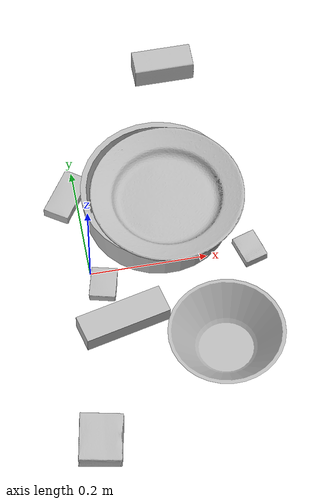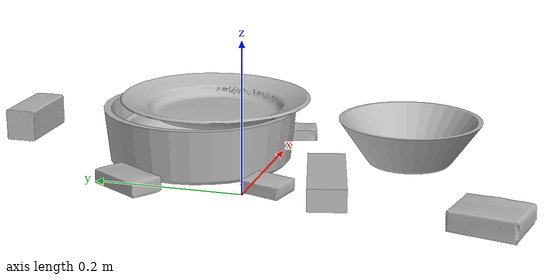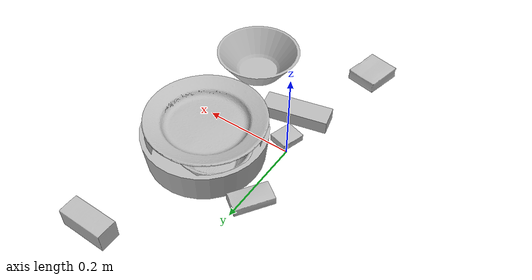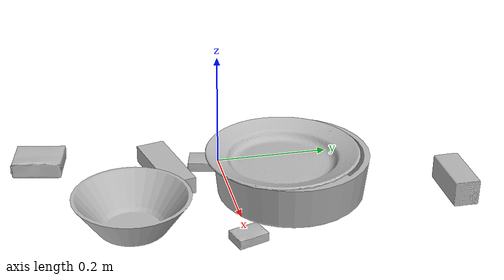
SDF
<sdf version="1.4">
  <world name="default">
    <light name="light1" type="point">
      <pose>0 0 1 0 0 0</pose>
      <diffuse>3 3 3 1</diffuse>
      <specular>3 3 3 1</specular>
    </light>
    <light name="light2" type="point">
      <pose>0 0.5 2 0 0 0</pose>
      <diffuse>1 1 1 1</diffuse>
      <specular>1 1 1 1</specular>
    </light>
    <light name="light3" type="point">
      <pose>0 0.5 2 0 0 0</pose>
      <diffuse>3 3 3 1</diffuse>
      <specular>3 3 3 1</specular>
    </light>
    <scene>
      <ambient>0.7 0.7 0.7</ambient>
    </scene>
    <model name="box1">
      <link name="link_box1">
        <collision name="default">
          <geometry>
            <mesh>
              <uri>model://jenga/collision_meshes/collision.obj</uri>
              <scale>1.0 1.0 1.0</scale>
            </mesh>
          </geometry>
          <surface>
            <friction>
              <ode>
                <mu>0.5</mu>
                <mu2>0.5</mu2>
              </ode>
            </friction>
          <contact>
        <ode>
            <max_vel>0</max_vel>
            <min_depth>0.0001</min_depth>
            <kp>1e8</kp>
        </ode>
    </contact></surface>
        </collision>
        <visual name="default">
          <geometry>
            <mesh>
              <uri>model://jenga/visual_meshes/visual.dae</uri>
              <scale>1.0 1.0 1.0</scale>
            </mesh>
          </geometry>
        </visual>
        <inertial>
          <mass>0.21843092143535614</mass>
          <pose>-2.502855807051674e-07 -0.00010250011109746993 -4.092339804628864e-05 0.0 -7.342154049184251e-07 0.0</pose>
          <inertia>
            <ixx>6.0445138e-05</ixx>
            <iyy>0.0004095746</iyy>
            <izz>0.00043725572</izz>
            <ixy>0</ixy>
            <ixz>0</ixz>
            <iyz>0</iyz>
          </inertia>
        </inertial>
      </link>
      <pose>0.0394376739859581 -0.1006840243935585 0.014999998733401299 2.735757068011383e-08 -4.708119448507397e-09 0.23606508501391757</pose>
    </model>
    <model name="box11">
      <link name="link_box11">
        <collision name="default">
          <geometry>
            <mesh>
              <uri>model://pudding_box/collision_meshes/collision.obj</uri>
              <scale>0.5 0.5 0.5</scale>
            </mesh>
          </geometry>
          <surface>
            <friction>
              <ode>
                <mu>0.5</mu>
                <mu2>0.5</mu2>
              </ode>
            </friction>
          <contact>
        <ode>
            <max_vel>0</max_vel>
            <min_depth>0.0001</min_depth>
            <kp>1e8</kp>
        </ode>
    </contact></surface>
        </collision>
        <visual name="default">
          <geometry>
            <mesh>
              <uri>model://pudding_box/visual_meshes/visual.dae</uri>
              <scale>0.5 0.5 0.5</scale>
            </mesh>
          </geometry>
        </visual>
        <inertial>
          <mass>0.04130476340651512</mass>
          <pose>0.00024474109522998333 0.00040339428232982755 -0.0002594413817860186 0.005213101341234124 -0.006603795469139562 0.020079830758209564</pose>
          <inertia>
            <ixx>1.1673226e-05</ixx>
            <iyy>7.85383e-06</iyy>
            <izz>1.723857e-05</izz>
            <ixy>0</ixy>
            <ixz>0</ixz>
            <iyz>0</iyz>
          </inertia>
        </inertial>
      </link>
      <pose>0.01819656975567341 -0.02860868163406849 0.00986290443688631 0.02234847384480279 -0.011391741357205897 -0.25789985560168865</pose>
    </model>
    <model name="box2">
      <link name="link_box2">
        <collision name="default">
          <geometry>
            <mesh>
              <uri>model://gelatin_box/collision_meshes/collision.obj</uri>
              <scale>1.0 1.0 1.0</scale>
            </mesh>
          </geometry>
          <surface>
            <friction>
              <ode>
                <mu>0.5</mu>
                <mu2>0.5</mu2>
              </ode>
            </friction>
          <contact>
        <ode>
            <max_vel>0</max_vel>
            <min_depth>0.0001</min_depth>
            <kp>1e8</kp>
        </ode>
    </contact></surface>
        </collision>
        <visual name="default">
          <geometry>
            <mesh>
              <uri>model://gelatin_box/visual_meshes/visual.dae</uri>
              <scale>1.0 1.0 1.0</scale>
            </mesh>
          </geometry>
        </visual>
        <inertial>
          <mass>0.24153950810432434</mass>
          <pose>0.0004319618456065655 0.00011156871914863586 -0.0003640321083366871 -0.001050371984258798 -0.004755819621622892 0.016440559472145032</pose>
          <inertia>
            <ixx>0.00017050719</ixx>
            <iyy>0.00012179239</iyy>
            <izz>0.0002595499</izz>
            <ixy>0</ixy>
            <ixz>0</ixz>
            <iyz>0</iyz>
          </inertia>
        </inertial>
      </link>
      <pose>-0.03494126722216606 -0.31722429394721985 0.015168317593634129 0.005597460588126201 -0.007304547001823196 -0.20834730351162248</pose>
    </model>
    <model name="box21">
      <link name="link_box21">
        <collision name="default">
          <geometry>
            <mesh>
              <uri>model://cracker_box/collision_meshes/collision.obj</uri>
              <scale>0.25 0.25 0.25</scale>
            </mesh>
          </geometry>
          <surface>
            <friction>
              <ode>
                <mu>0.5</mu>
                <mu2>0.5</mu2>
              </ode>
            </friction>
          <contact>
        <ode>
            <max_vel>0</max_vel>
            <min_depth>0.0001</min_depth>
            <kp>1e8</kp>
        </ode>
    </contact></surface>
        </collision>
        <visual name="default">
          <geometry>
            <mesh>
              <uri>model://cracker_box/visual_meshes/visual.dae</uri>
              <scale>0.25 0.25 0.25</scale>
            </mesh>
          </geometry>
        </visual>
        <inertial>
          <mass>0.04855586588382721</mass>
          <pose>0.00023660322767682374 6.358561222441494e-05 -0.00042573834070935845 -0.00031620783521113603 -0.01110649053142329 0.0025467954689779603</pose>
          <inertia>
            <ixx>7.719027e-06</ixx>
            <iyy>1.2745631e-05</iyy>
            <izz>1.8189185e-05</izz>
            <ixy>0</ixy>
            <ixz>0</ixz>
            <iyz>0</iyz>
          </inertia>
        </inertial>
      </link>
      <pose>0.27287572622299194 -0.003259524703025818 0.00909603200852871 -0.014050266841666232 -0.005016419160150208 1.8665220141250667</pose>
    </model>
    <model name="box3">
      <link name="link_box3">
        <collision name="default">
          <geometry>
            <mesh>
              <uri>model://wood_block/collision_meshes/collision.obj</uri>
              <scale>0.5 0.5 0.5</scale>
            </mesh>
          </geometry>
          <surface>
            <friction>
              <ode>
                <mu>0.5</mu>
                <mu2>0.5</mu2>
              </ode>
            </friction>
          <contact>
        <ode>
            <max_vel>0</max_vel>
            <min_depth>0.0001</min_depth>
            <kp>1e8</kp>
        </ode>
    </contact></surface>
        </collision>
        <visual name="default">
          <geometry>
            <mesh>
              <uri>model://wood_block/visual_meshes/visual.dae</uri>
              <scale>0.5 0.5 0.5</scale>
            </mesh>
          </geometry>
        </visual>
        <inertial>
          <mass>0.17342756688594818</mass>
          <pose>-2.906657982748584e-06 -0.000285404734313488 0.00013204291462898254 -0.052208426481931185 -0.005192696107352816 -0.006861379630616638</pose>
          <inertia>
            <ixx>5.8018082e-05</ixx>
            <iyy>0.00018327912</iyy>
            <izz>0.00018259356</izz>
            <ixy>0</ixy>
            <ixz>0</ixz>
            <iyz>0</iyz>
          </inertia>
        </inertial>
      </link>
      <pose>0.19162145256996155 0.3779684901237488 0.022629255428910255 -0.005208565849467675 0.005718648368132103 0.004891844705487058</pose>
    </model>
    <model name="box31">
      <link name="link_box31">
        <collision name="default">
          <geometry>
            <mesh>
              <uri>model://sugar_box/collision_meshes/collision.obj</uri>
              <scale>0.5 0.5 0.5</scale>
            </mesh>
          </geometry>
          <surface>
            <friction>
              <ode>
                <mu>0.5</mu>
                <mu2>0.5</mu2>
              </ode>
            </friction>
          <contact>
        <ode>
            <max_vel>0</max_vel>
            <min_depth>0.0001</min_depth>
            <kp>1e8</kp>
        </ode>
    </contact></surface>
        </collision>
        <visual name="default">
          <geometry>
            <mesh>
              <uri>model://sugar_box/visual_meshes/visual.dae</uri>
              <scale>0.5 0.5 0.5</scale>
            </mesh>
          </geometry>
        </visual>
        <inertial>
          <mass>0.102778859436512</mass>
          <pose>0.0005171863595023751 1.924554817378521e-05 -0.00018182402709499002 -0.00040462592244169 0.0010506634051582892 0.0026153783234817013</pose>
          <inertia>
            <ixx>2.1408765e-05</ixx>
            <iyy>6.919753e-05</iyy>
            <izz>8.2837694e-05</izz>
            <ixy>0</ixy>
            <ixz>0</ixz>
            <iyz>0</iyz>
          </inertia>
        </inertial>
      </link>
      <pose>-0.015232224017381668 0.14961393177509308 0.011399302631616592 0.0007754463514609489 -0.023433272661757733 -2.1739318808614403</pose>
    </model>
    <model name="plate1">
      <link name="link_plate1">
        <collision name="default">
          <geometry>
            <mesh>
              <uri>model://pan_tefal/collision_meshes/collision.obj</uri>
              <scale>1.0 1.0 1.0</scale>
            </mesh>
          </geometry>
          <surface>
            <friction>
              <ode>
                <mu>0.5</mu>
                <mu2>0.5</mu2>
              </ode>
            </friction>
          <contact>
        <ode>
            <max_vel>0</max_vel>
            <min_depth>0.0001</min_depth>
            <kp>1e8</kp>
        </ode>
    </contact></surface>
        </collision>
        <visual name="default">
          <geometry>
            <mesh>
              <uri>model://pan_tefal/visual_meshes/visual.dae</uri>
              <scale>1.0 1.0 1.0</scale>
            </mesh>
          </geometry>
        </visual>
        <inertial>
          <mass>1.4199398756027222</mass>
          <pose>-0.00018002341676037759 3.278919029980898e-05 -0.00851493515074253 0.0008190238651519852 -0.0003301374854212985 -0.3318555266382279</pose>
          <inertia>
            <ixx>0.009801778</ixx>
            <iyy>0.009864969</iyy>
            <izz>0.01804318</izz>
            <ixy>0</ixy>
            <ixz>0</ixz>
            <iyz>0</iyz>
          </inertia>
        </inertial>
      </link>
      <pose>0.1353151500225067 0.10068630427122116 0.03796716779470444 0.0004532557182131779 0.00045905012728001267 1.4763515853845142</pose>
    </model>
    <model name="bowl1">
      <link name="link_bowl1">
        <collision name="default">
          <geometry>
            <mesh>
              <uri>model://bowl/collision_meshes/collision.obj</uri>
              <scale>1.0 1.0 1.0</scale>
            </mesh>
          </geometry>
          <surface>
            <friction>
              <ode>
                <mu>0.5</mu>
                <mu2>0.5</mu2>
              </ode>
            </friction>
          <contact>
        <ode>
            <max_vel>0</max_vel>
            <min_depth>0.0001</min_depth>
            <kp>1e8</kp>
        </ode>
    </contact></surface>
        </collision>
        <visual name="default">
          <geometry>
            <mesh>
              <uri>model://bowl/visual_meshes/visual.dae</uri>
              <scale>1.0 1.0 1.0</scale>
            </mesh>
          </geometry>
        </visual>
        <inertial>
          <mass>0.10393582284450531</mass>
          <pose>0.00020445296831894666 -0.001030207728035748 -0.0008042644476518035 -0.01576405922653839 0.014546845721322095 0.7140430703653545</pose>
          <inertia>
            <ixx>0.00023874876</ixx>
            <iyy>0.00023341418</iyy>
            <izz>0.00040165734</izz>
            <ixy>0</ixy>
            <ixz>0</ixz>
            <iyz>0</iyz>
          </inertia>
        </inertial>
      </link>
      <pose>0.10285728424787521 0.11407145857810974 0.03540068864822388 -0.002578348705977693 0.001367720972709558 2.102141980295272</pose>
    </model>
    <model name="plate2">
      <link name="link_plate2">
        <collision name="default">
          <geometry>
            <mesh>
              <uri>model://plate/collision_meshes/collision.obj</uri>
              <scale>1.0 1.0 1.0</scale>
            </mesh>
          </geometry>
          <surface>
            <friction>
              <ode>
                <mu>0.5</mu>
                <mu2>0.5</mu2>
              </ode>
            </friction>
          <contact>
        <ode>
            <max_vel>0</max_vel>
            <min_depth>0.0001</min_depth>
            <kp>1e8</kp>
        </ode>
    </contact></surface>
        </collision>
        <visual name="default">
          <geometry>
            <mesh>
              <uri>model://plate/visual_meshes/visual.dae</uri>
              <scale>1.0 1.0 1.0</scale>
            </mesh>
          </geometry>
        </visual>
        <inertial>
          <mass>0.11643410474061966</mass>
          <pose>-0.0006044629844836891 0.000278257648460567 -0.001056199660524726 0.0022187586917557377 -0.0032254970862864826 0.45261837235677477</pose>
          <inertia>
            <ixx>0.00054468104</ixx>
            <iyy>0.0005394714</iyy>
            <izz>0.0010653147</izz>
            <ixy>0</ixy>
            <ixz>0</ixz>
            <iyz>0</iyz>
          </inertia>
        </inertial>
      </link>
      <pose>0.14685051143169403 0.08269636332988739 0.07586081326007843 0.00022005640198883607 0.011718493790742168 -2.03361979543037</pose>
    </model>
    <model name="bowl2">
      <link name="link_bowl2">
        <collision name="default">
          <geometry>
            <mesh>
              <uri>model://bowl_a/collision_meshes/collision.obj</uri>
              <scale>1.0 1.0 1.0</scale>
            </mesh>
          </geometry>
          <surface>
            <friction>
              <ode>
                <mu>0.5</mu>
                <mu2>0.5</mu2>
              </ode>
            </friction>
          <contact>
        <ode>
            <max_vel>0</max_vel>
            <min_depth>0.0001</min_depth>
            <kp>1e8</kp>
        </ode>
    </contact></surface>
        </collision>
        <visual name="default">
          <geometry>
            <mesh>
              <uri>model://bowl_a/visual_meshes/visual.dae</uri>
              <scale>1.0 1.0 1.0</scale>
            </mesh>
          </geometry>
        </visual>
        <inertial>
          <mass>0.4875580668449402</mass>
          <pose>0.00027867365861311555 4.73092841275502e-05 -0.0013765289913862944 -0.0009805446644095745 -0.0010938154105800495 -0.1912289991244328</pose>
          <inertia>
            <ixx>0.0013881001</ixx>
            <iyy>0.0013966226</iyy>
            <izz>0.0024687892</izz>
            <ixy>0</ixy>
            <ixz>0</ixz>
            <iyz>0</iyz>
          </inertia>
        </inertial>
      </link>
      <pose>0.19934582710266113 -0.17954251170158386 0.030382394790649414 -2.0020911281995058e-06 1.067907855997972e-05 1.6922897510158499</pose>
    </model>
  <physics type="ode">
      <max_contacts>50</max_contacts>
      <ode>
        <solver>
          <type>quick</type>
          <iters>75</iters>
        </solver>
        <constraints>
          <contact_max_correcting_vel>0</contact_max_correcting_vel>
          <contact_surface_layer>0</contact_surface_layer>
        </constraints>
      </ode>
    </physics></world>
</sdf>
